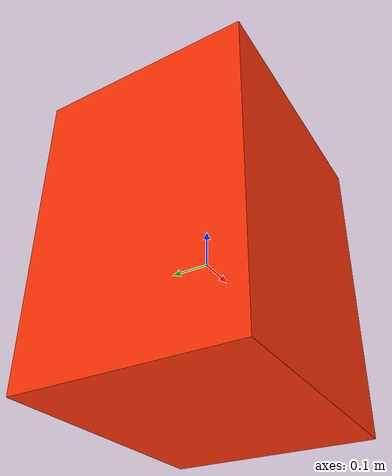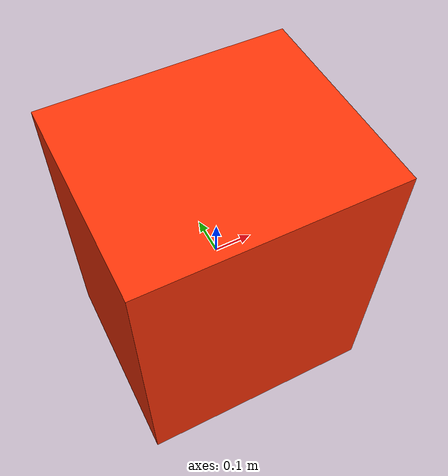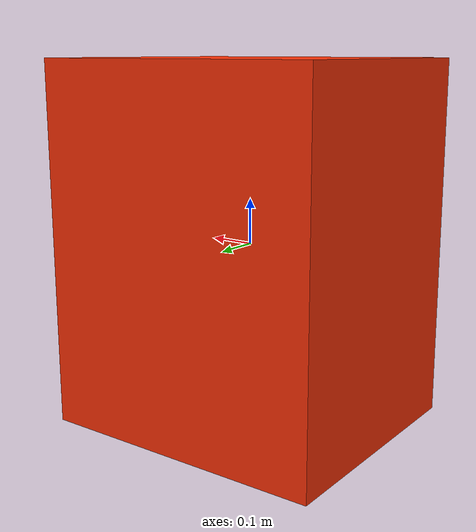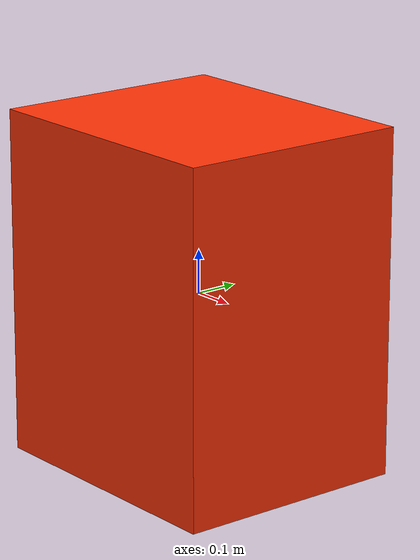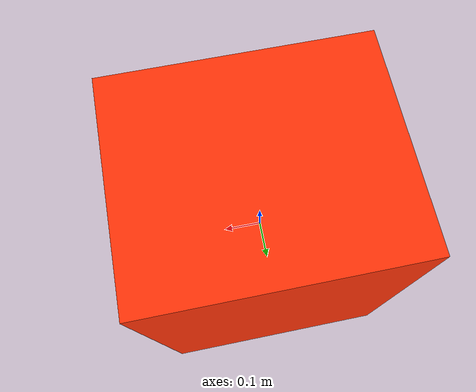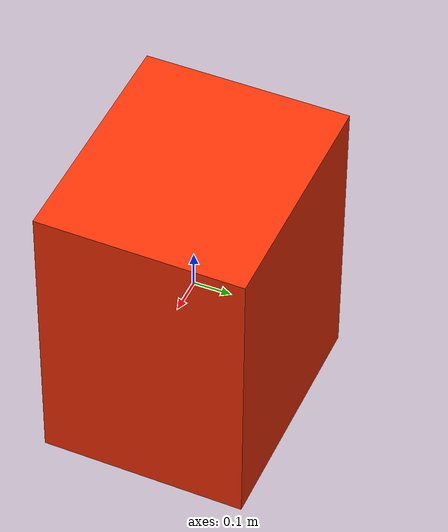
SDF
<?xml version="1.0"?>
<sdf version="1.6">
  <model name="open_space_obstacle">
    <static>true</static>
    <link name="link">
      <collision name="collision"><geometry><box><size>0.65 0.55 0.80</size></box></geometry></collision>
      <visual name="visual">
        <geometry><box><size>0.65 0.55 0.80</size></box></geometry>
        <material><ambient>1.0 0.20 0.03 1</ambient><diffuse>1.0 0.20 0.03 1</diffuse></material>
      </visual>
    </link>
  </model>
</sdf>
